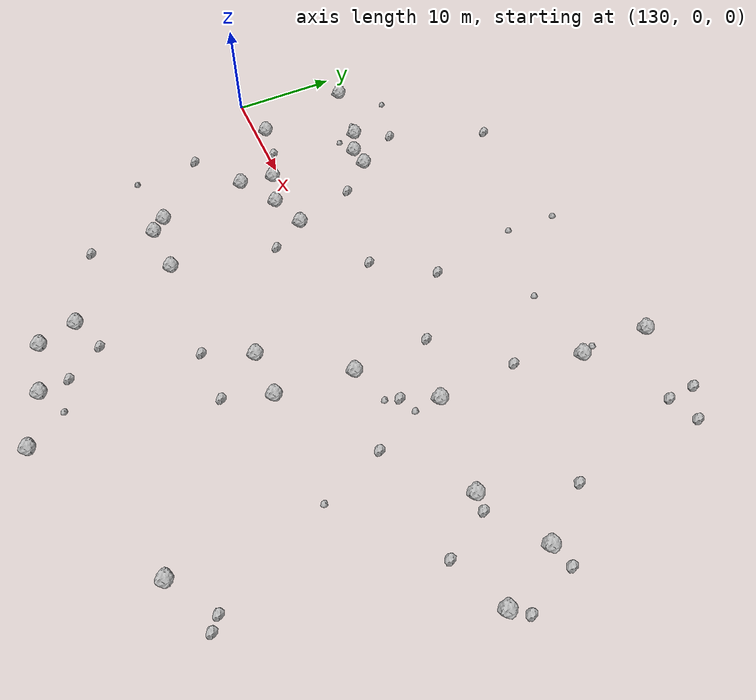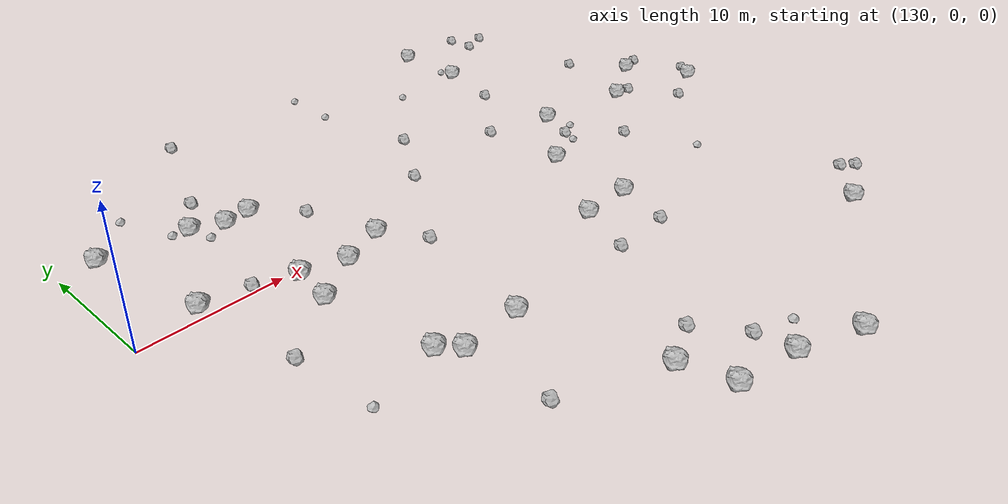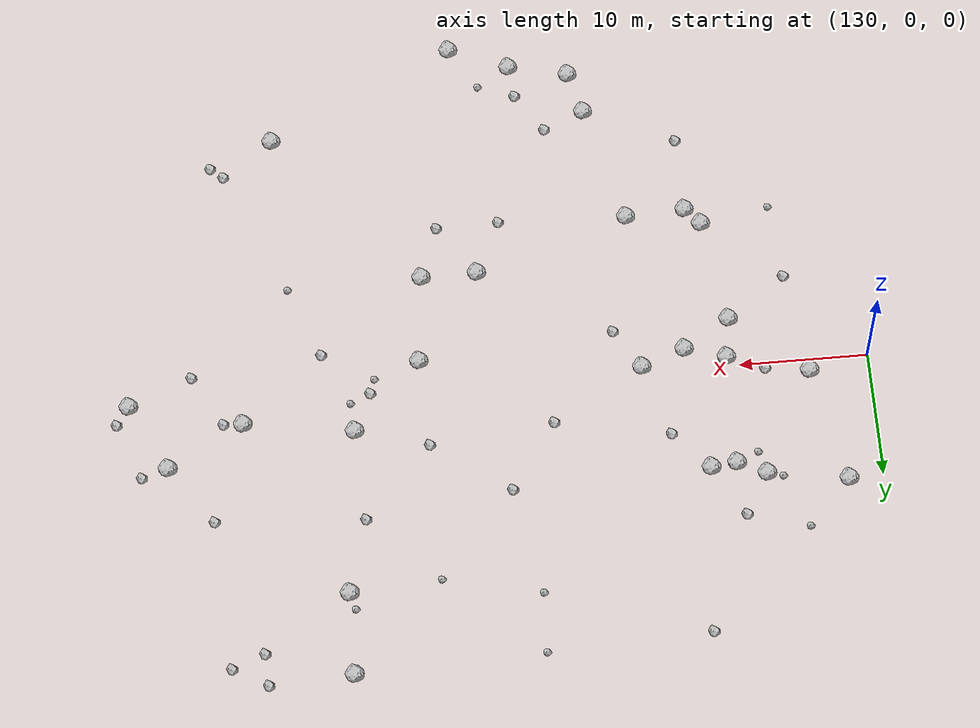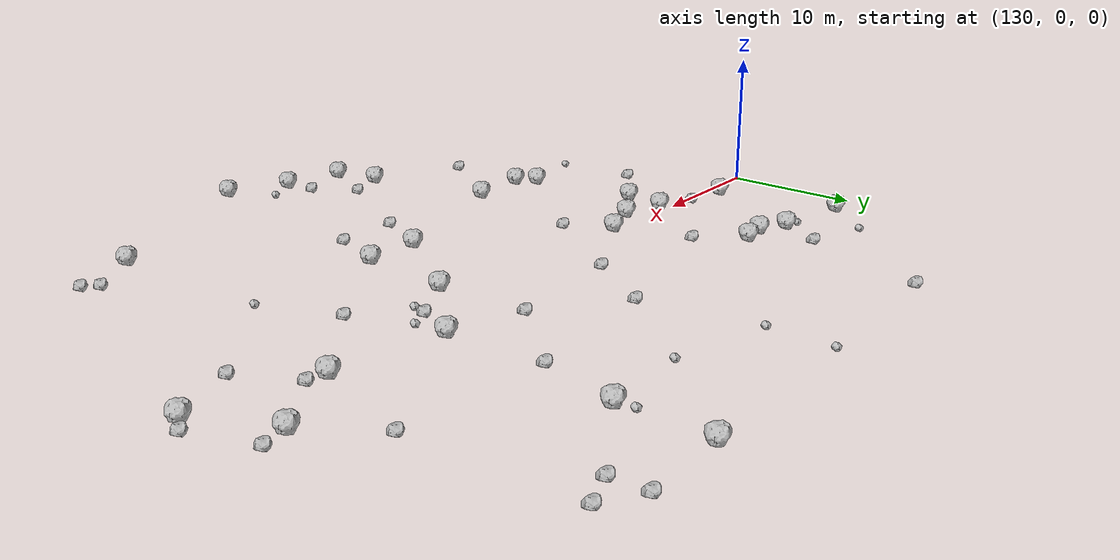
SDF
<sdf version="1.6">
 <world name="default">
  <include><uri>model://sun</uri></include>
  <model name="rock1_4_1">
   <include><uri>model://rock1</uri><pose>132.7160565171227 10.24851856443506 0.5 0 0 0</pose></include>
  </model>
  <model name="rock1_4_2">
   <include><uri>model://rock1</uri><pose>141.6884352393357 -12.316665746808678 0.5 0 0 0</pose></include>
  </model>
  <model name="rock1_4_3">
   <include><uri>model://rock1</uri><pose>163.96669199784412 -9.549510103429025 0.5 0 0 0</pose></include>
  </model>
  <model name="rock1_4_4">
   <include><uri>model://rock1</uri><pose>155.52839741140292 -27.497558579371905 0.5 0 0 0</pose></include>
  </model>
  <model name="rock1_4_5">
   <include><uri>model://rock1</uri><pose>141.12309208836757 8.215310336721188 0.5 0 0 0</pose></include>
  </model>
  <model name="rock1_4_6">
   <include><uri>model://rock1</uri><pose>140.45091128585094 -3.9173879927265887 0.5 0 0 0</pose></include>
  </model>
  <model name="rock1_4_7">
   <include><uri>model://rock1</uri><pose>138.9113978675609 9.263663821420238 0.5 0 0 0</pose></include>
  </model>
  <model name="rock1_4_8">
   <include><uri>model://rock1</uri><pose>142.84324961073804 -13.65477711166755 0.5 0 0 0</pose></include>
  </model>
  <model name="rock1_4_9">
   <include><uri>model://rock1</uri><pose>147.56050437733558 -0.42639592966723683 0.5 0 0 0</pose></include>
  </model>
  <model name="rock1_4_10">
   <include><uri>model://rock1</uri><pose>171.48316312460318 16.25479227936961 0.5 0 0 0</pose></include>
  </model>
  <model name="rock1_4_11">
   <include><uri>model://rock1</uri><pose>144.13738582119854 -1.6510724136067552 0.5 0 0 0</pose></include>
  </model>
  <model name="rock1_4_12">
   <include><uri>model://rock1</uri><pose>160.17010249914415 -29.46047096999139 0.5 0 0 0</pose></include>
  </model>
  <model name="rock1_4_13">
   <include><uri>model://rock1</uri><pose>150.85851923834446 -26.452305971327824 0.5 0 0 0</pose></include>
  </model>
  <model name="rock1_4_14">
   <include><uri>model://rock1</uri><pose>184.60933088951273 4.875867200040652 0.5 0 0 0</pose></include>
  </model>
  <model name="rock1_4_15">
   <include><uri>model://rock1</uri><pose>134.6554108945713 1.0001647007741035 0.5 0 0 0</pose></include>
  </model>
  <model name="rock1_4_16">
   <include><uri>model://rock1</uri><pose>178.64705204315123 1.685647623704245 0.5 0 0 0</pose></include>
  </model>
  <model name="rock1_4_17">
   <include><uri>model://rock1</uri><pose>187.33644490814686 -0.5223558797079306 0.5 0 0 0</pose></include>
  </model>
  <model name="rock1_4_18">
   <include><uri>model://rock1</uri><pose>140.9440825151574 -0.6870912561283724 0.5 0 0 0</pose></include>
  </model>
  <model name="rock1_4_19">
   <include><uri>model://rock1</uri><pose>143.11690027690005 8.429394281241073 0.5 0 0 0</pose></include>
  </model>
  <model name="rock1_4_20">
   <include><uri>model://rock1</uri><pose>149.9517198852362 -23.012661565951717 0.5 0 0 0</pose></include>
  </model>
  <model name="rock1_4_21">
   <include><uri>model://rock1</uri><pose>174.85617580797455 -22.50829629895938 0.5 0 0 0</pose></include>
  </model>
  <model name="rock1_4_22">
   <include><uri>model://rock1</uri><pose>171.59767822317906 22.78854643688016 0.5 0 0 0</pose></include>
  </model>
  <model name="rock1_4_23">
   <include><uri>model://rock1</uri><pose>170.1224864222306 3.0002772280030214 0.5 0 0 0</pose></include>
  </model>
  <model name="rock1_4_24">
   <include><uri>model://rock1</uri><pose>147.49291930608877 -13.423799006848117 0.5 0 0 0</pose></include>
  </model>
  <model name="rock1_4_25">
   <include><uri>model://rock1</uri><pose>164.7210791468287 -2.4409353261733493 0.5 0 0 0</pose></include>
  </model>
  <model name="rock1_4_26">
   <include><uri>model://rock1</uri><pose>159.61163451305904 -9.596635047413145 0.5 0 0 0</pose></include>
  </model>
  <model name="rock2_4_0">
   <include><uri>model://rock2</uri><pose>145.83530906224507 5.370610893428456 0.3 0 0 0</pose></include>
  </model>
  <model name="rock2_4_1">
   <include><uri>model://rock2</uri><pose>142.9020065599086 -19.791512308909795 0.3 0 0 0</pose></include>
  </model>
  <model name="rock2_4_2">
   <include><uri>model://rock2</uri><pose>162.43289576878095 -13.737498858424097 0.3 0 0 0</pose></include>
  </model>
  <model name="rock2_4_3">
   <include><uri>model://rock2</uri><pose>153.16549198376245 -21.69253926407267 0.3 0 0 0</pose></include>
  </model>
  <model name="rock2_4_4">
   <include><uri>model://rock2</uri><pose>154.74594930981303 3.6243509999695576 0.3 0 0 0</pose></include>
  </model>
  <model name="rock2_4_5">
   <include><uri>model://rock2</uri><pose>157.54561145980708 -13.84073965398149 0.3 0 0 0</pose></include>
  </model>
  <model name="rock2_4_6">
   <include><uri>model://rock2</uri><pose>172.22247745647707 -3.6272305013855792 0.3 0 0 0</pose></include>
  </model>
  <model name="rock2_4_7">
   <include><uri>model://rock2</uri><pose>178.83892743225468 -19.70026439678511 0.3 0 0 0</pose></include>
  </model>
  <model name="rock2_4_8">
   <include><uri>model://rock2</uri><pose>158.4149470476582 8.921625390613002 0.3 0 0 0</pose></include>
  </model>
  <model name="rock2_4_9">
   <include><uri>model://rock2</uri><pose>169.79208224103746 10.371960404124536 0.3 0 0 0</pose></include>
  </model>
  <model name="rock2_4_10">
   <include><uri>model://rock2</uri><pose>178.16713173950234 20.57081503131309 0.3 0 0 0</pose></include>
  </model>
  <model name="rock2_4_11">
   <include><uri>model://rock2</uri><pose>181.30200601855555 9.576250759008161 0.3 0 0 0</pose></include>
  </model>
  <model name="rock2_4_12">
   <include><uri>model://rock2</uri><pose>178.0446282711447 23.1175599988495 0.3 0 0 0</pose></include>
  </model>
  <model name="rock2_4_13">
   <include><uri>model://rock2</uri><pose>144.37791659038976 21.742687564865314 0.3 0 0 0</pose></include>
  </model>
  <model name="rock2_4_14">
   <include><uri>model://rock2</uri><pose>155.24940387398016 -24.90402876865283 0.3 0 0 0</pose></include>
  </model>
  <model name="rock2_4_15">
   <include><uri>model://rock2</uri><pose>179.81410308043047 -20.54070150002856 0.3 0 0 0</pose></include>
  </model>
  <model name="rock2_4_16">
   <include><uri>model://rock2</uri><pose>186.63063017176393 5.460034132707506 0.3 0 0 0</pose></include>
  </model>
  <model name="rock2_4_17">
   <include><uri>model://rock2</uri><pose>149.4929126923135 -3.63611879941244 0.3 0 0 0</pose></include>
  </model>
  <model name="rock2_4_18">
   <include><uri>model://rock2</uri><pose>140.78938812747748 12.504425608263517 0.3 0 0 0</pose></include>
  </model>
  <model name="rock2_4_19">
   <include><uri>model://rock2</uri><pose>180.13872813053024 1.5517162737304027 0.3 0 0 0</pose></include>
  </model>
  <model name="rock2_4_20">
   <include><uri>model://rock2</uri><pose>180.72231451006192 21.575752740347404 0.3 0 0 0</pose></include>
  </model>
  <model name="rock2_4_21">
   <include><uri>model://rock2</uri><pose>168.6841742187116 -0.06333809887089359 0.3 0 0 0</pose></include>
  </model>
  <model name="rock2_4_22">
   <include><uri>model://rock2</uri><pose>182.3693166258467 -2.576202131836286 0.3 0 0 0</pose></include>
  </model>
  <model name="rock2_4_23">
   <include><uri>model://rock2</uri><pose>138.04863982847394 0.5121816636304359 0.3 0 0 0</pose></include>
  </model>
  <model name="rock2_4_24">
   <include><uri>model://rock2</uri><pose>188.32924847840437 0.9026691604215742 0.3 0 0 0</pose></include>
  </model>
  <model name="rock2_4_25">
   <include><uri>model://rock2</uri><pose>164.44137576188845 4.647258729493927 0.3 0 0 0</pose></include>
  </model>
  <model name="rock2_4_26">
   <include><uri>model://rock2</uri><pose>135.754920017044 -7.1922275904126565 0.3 0 0 0</pose></include>
  </model>
  <model name="rock3_4_0">
   <include><uri>model://rock3</uri><pose>171.08741493738694 17.522867536032564 0.2 0 0 0</pose></include>
  </model>
  <model name="rock3_4_1">
   <include><uri>model://rock3</uri><pose>168.2486063885749 -1.2933560160708346 0.2 0 0 0</pose></include>
  </model>
  <model name="rock3_4_2">
   <include><uri>model://rock3</uri><pose>137.64631471408805 9.525632131976963 0.2 0 0 0</pose></include>
  </model>
  <model name="rock3_4_3">
   <include><uri>model://rock3</uri><pose>156.80309523303458 17.438990002535327 0.2 0 0 0</pose></include>
  </model>
  <model name="rock3_4_4">
   <include><uri>model://rock3</uri><pose>164.39547580631847 15.699070443134758 0.2 0 0 0</pose></include>
  </model>
  <model name="rock3_4_5">
   <include><uri>model://rock3</uri><pose>158.07457153675182 -26.04767671761405 0.2 0 0 0</pose></include>
  </model>
  <model name="rock3_4_6">
   <include><uri>model://rock3</uri><pose>136.0536613103683 13.816645798902272 0.2 0 0 0</pose></include>
  </model>
  <model name="rock3_4_7">
   <include><uri>model://rock3</uri><pose>139.3428398578978 7.384110436790877 0.2 0 0 0</pose></include>
  </model>
  <model name="rock3_4_8">
   <include><uri>model://rock3</uri><pose>170.2350920590004 0.5986207682753033 0.2 0 0 0</pose></include>
  </model>
  <model name="rock3_4_9">
   <include><uri>model://rock3</uri><pose>136.21471029427255 -13.385218749142972 0.2 0 0 0</pose></include>
  </model>
  <model name="rock3_4_10">
   <include><uri>model://rock3</uri><pose>157.01137483732558 22.24343962606138 0.2 0 0 0</pose></include>
  </model>
  <model name="rock3_4_11">
   <include><uri>model://rock3</uri><pose>174.41873709606082 -9.489628777614488 0.2 0 0 0</pose></include>
  </model>
 </world>
</sdf>
